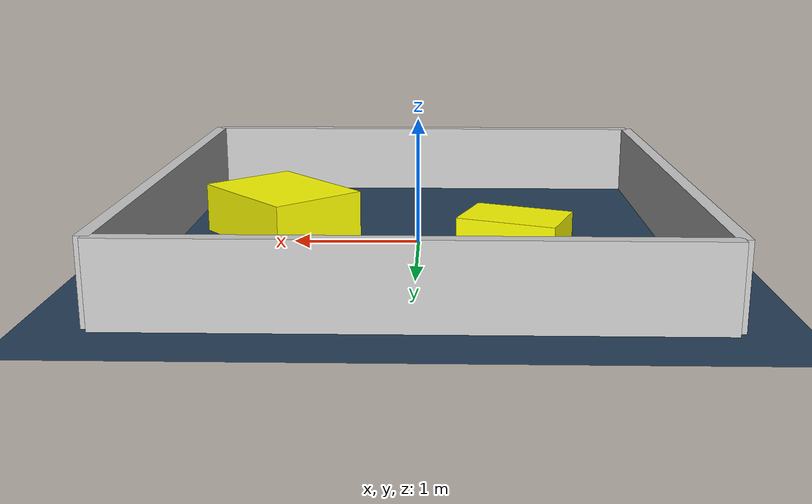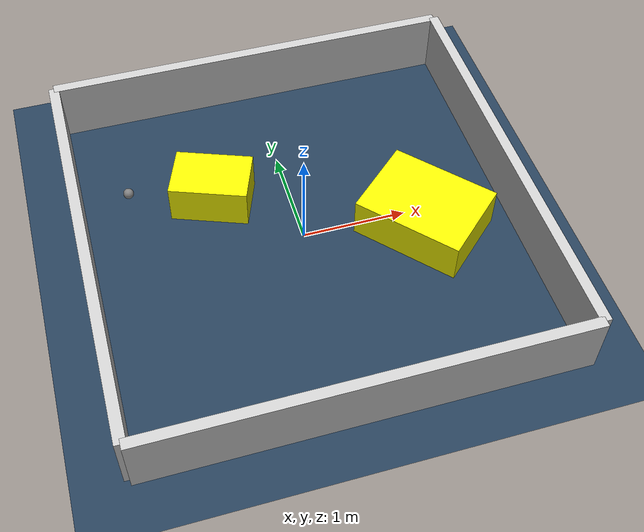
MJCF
<?xml version="1.0" ?>
<mujoco model="generated_environment">
  <option timestep="0.01" integrator="RK4" cone="elliptic"/>
  <default>
    <geom density="1"/>
  </default>
  <asset>
    <texture builtin="gradient" height="3072" rgb1="0.3 0.5 0.7" rgb2="0 0 0" type="skybox" width="512"/>
    <texture builtin="checker" height="300" mark="edge" markrgb="0.8 0.8 0.8" name="groundplane" rgb1="0.2 0.3 0.4" rgb2="0.1 0.2 0.3" type="2d" width="300"/>
    <material name="groundplane" reflectance="0.2" texrepeat="5 5" texture="groundplane" texuniform="true"/>
    <material name="robot" rgba="0.0 1.0 0.0 1"/>
  </asset>
  <worldbody>
    <light dir="0 0 -1" directional="true" pos="0 0 1.5"/>
    <geom condim="4" friction="1.0 0.005 0.001" material="groundplane" name="floor" size="0 0 0.05" type="plane"/>
    <body name="walls">
      <geom name="wall_1" condim="4" pos="-2.0 0.0 0.3" rgba="0.800000011920929 0.800000011920929 0.800000011920929 1.0" size="0.05 2.0 0.3" type="box"/>
      <geom name="wall_2" condim="4" pos="2.0 0.0 0.3" rgba="0.800000011920929 0.800000011920929 0.800000011920929 1.0" size="0.05 2.0 0.3" type="box"/>
      <geom name="wall_3" condim="4" pos="0.0 -2.0 0.3" rgba="0.800000011920929 0.800000011920929 0.800000011920929 1.0" size="2.0 0.05 0.3" type="box"/>
      <geom name="wall_4" condim="4" pos="0.0 2.0 0.3" rgba="0.800000011920929 0.800000011920929 0.800000011920929 1.0" size="2.0 0.05 0.3" type="box"/>
    </body>
    <body name="robot">
      <joint name="joint_x" type="slide" pos="0 0 0" axis="1 0 0"/>
      <joint name="joint_y" type="slide" pos="0 0 0" axis="0 1 0"/>
      <geom name="robot" type="sphere" pos="-1.509765827998933 0.797644590212987 0.2" size="0.05" mass="5." friction="1.0 0.005 0.0001" condim="4"/>
      <site name="sensor_ball"/>
    </body>
    <body name="obstacle_1_movable">
      <geom name="obstacle_1_movable" condim="4" pos="1.12437112066802 -0.19943249318770118 0.2" euler="0 0 42.22431019730496" friction="1.0 0.005 0.001" rgba="1 1 0 1" size="0.401593938803931 0.5273587085023004 0.2" type="box" mass="0.1"/>
      <joint type="free"/>
    </body>
    <body name="obstacle_2_movable">
      <geom name="obstacle_2_movable" condim="4" pos="-0.725111405605589 0.651811821152293 0.2" euler="0 0 159.00697901919585" friction="1.0 0.005 0.001" rgba="1 1 0 1" size="0.37007064564594516 0.25314792826863003 0.2" type="box" mass="0.1"/>
      <joint type="free"/>
    </body>
  </worldbody>
  <actuator>
    <motor name="actuator_x" joint="joint_x" gear="1" ctrlrange="-1 1"/>
    <motor name="actuator_y" joint="joint_y" gear="1" ctrlrange="-1 1"/>
  </actuator>
</mujoco>
